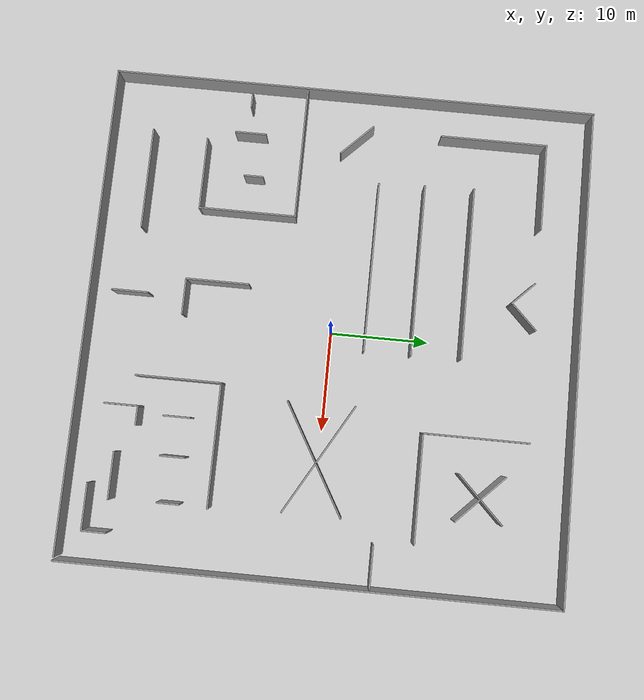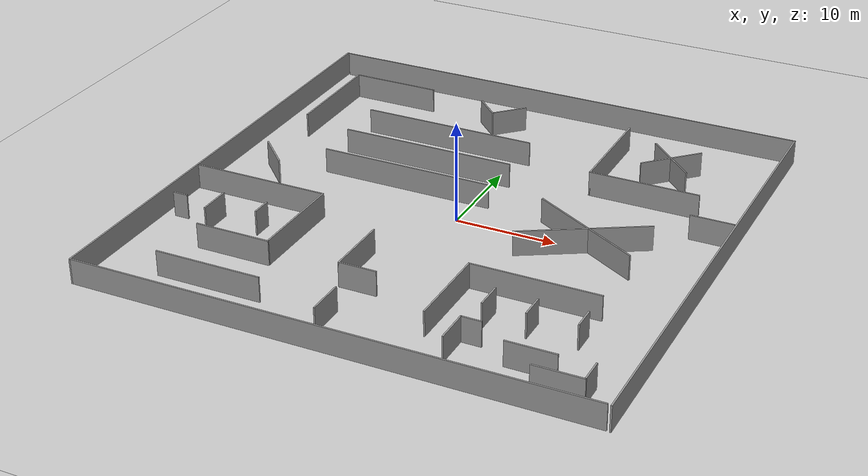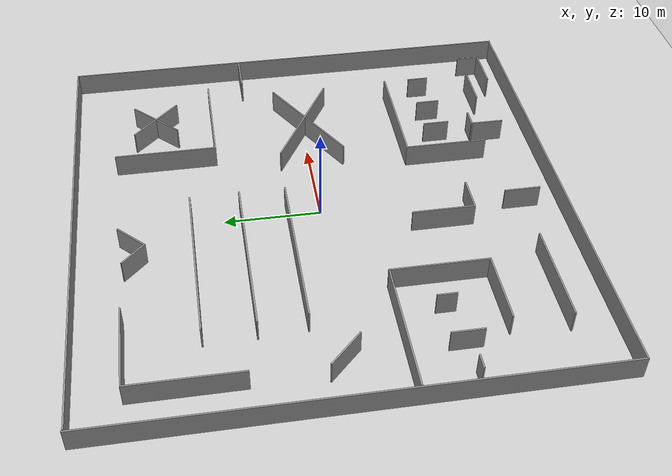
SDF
<sdf version="1.7">
 <world name="default">
  <light name="sun" type="directional">
   <pose>0 0 10 0 -0 0</pose>
   <diffuse>0.8 0.8 0.8 1</diffuse>
   <specular>0.2 0.2 0.2 1</specular>
   <attenuation>
    <range>1000</range>
    <constant>0.9</constant>
    <linear>0.01</linear>
    <quadratic>0.001</quadratic>
   </attenuation>
   <direction>-0.5 0.1 -0.9</direction>
   <spot><inner_angle>0</inner_angle><outer_angle>0</outer_angle><falloff>0</falloff></spot>
  </light>
  <model name="ground_plane">
   <static>1</static>
   <link name="link">
    <collision name="collision">
     <geometry><plane><normal>0 0 1</normal><size>100 100</size></plane></geometry>
     <surface>
      <contact><collide_bitmask>65535</collide_bitmask></contact>
      <friction><ode><mu>100</mu><mu2>50</mu2></ode></friction>
     </surface>
    </collision>
    <visual name="visual">
     <cast_shadows>0</cast_shadows>
     <geometry><plane><normal>0 0 1</normal><size>100 100</size></plane></geometry>
     <material>
      <script><uri>file://media/materials/scripts/gazebo.material</uri><name>Gazebo/Grey</name></script>
     </material>
    </visual>
   </link>
  </model>
  <gravity>0 0 -9.8</gravity>
  <magnetic_field>6e-06 2.3e-05 -4.2e-05</magnetic_field>
  <atmosphere type="adiabatic"/>
  <physics type="ode">
   <max_step_size>0.001</max_step_size>
   <real_time_factor>1</real_time_factor>
   <real_time_update_rate>1000</real_time_update_rate>
  </physics>
  <scene><ambient>0.4 0.4 0.4 1</ambient><background>0.7 0.7 0.7 1</background><shadows>1</shadows></scene>
  <spherical_coordinates>
   <surface_model>EARTH_WGS84</surface_model>
   <latitude_deg>0</latitude_deg>
   <longitude_deg>0</longitude_deg>
   <elevation>0</elevation>
   <heading_deg>0</heading_deg>
  </spherical_coordinates>
  <model name="test">
   <pose>-0.125 0.108001 0 0 -0 0</pose>
   <link name="Wall_0">
    <collision name="Wall_0_Collision">
     <geometry><box><size>50.15 0.15 2.5</size></box></geometry>
     <pose>0 0 1.25 0 -0 0</pose>
    </collision>
    <visual name="Wall_0_Visual">
     <pose>0 0 1.25 0 -0 0</pose>
     <geometry><box><size>50.15 0.15 2.5</size></box></geometry>
     <material>
      <script><uri>file://media/materials/scripts/gazebo.material</uri><name>Gazebo/Grey</name></script>
      <ambient>1 1 1 1</ambient>
     </material>
     <meta><layer>0</layer></meta>
    </visual>
    <pose>0.125 24.892 0 0 -0 0</pose>
   </link>
   <link name="Wall_10">
    <collision name="Wall_10_Collision">
     <geometry><box><size>17.75 0.15 2.5</size></box></geometry>
     <pose>0 0 1.25 0 -0 0</pose>
    </collision>
    <visual name="Wall_10_Visual">
     <pose>0 0 1.25 0 -0 0</pose>
     <geometry><box><size>17.75 0.15 2.5</size></box></geometry>
     <material>
      <script><uri>file://media/materials/scripts/gazebo.material</uri><name>Gazebo/Grey</name></script>
      <ambient>1 1 1 1</ambient>
     </material>
     <meta><layer>0</layer></meta>
    </visual>
    <pose>-6.99975 8.09699 0 0 -0 0</pose>
   </link>
   <link name="Wall_12">
    <collision name="Wall_12_Collision">
     <geometry><box><size>17.5 0.15 2.5</size></box></geometry>
     <pose>0 0 1.25 0 -0 0</pose>
    </collision>
    <visual name="Wall_12_Visual">
     <pose>0 0 1.25 0 -0 0</pose>
     <geometry><box><size>17.5 0.15 2.5</size></box></geometry>
     <material>
      <script><uri>file://media/materials/scripts/gazebo.material</uri><name>Gazebo/Grey</name></script>
      <ambient>1 1 1 1</ambient>
     </material>
     <meta><layer>0</layer></meta>
    </visual>
    <pose>-6.90952 3.36204 0 0 -0 0</pose>
   </link>
   <link name="Wall_14">
    <collision name="Wall_14_Collision">
     <geometry><box><size>12.5 0.15 2.5</size></box></geometry>
     <pose>0 0 1.25 0 -0 0</pose>
    </collision>
    <visual name="Wall_14_Visual">
     <pose>0 0 1.25 0 -0 0</pose>
     <geometry><box><size>12.5 0.15 2.5</size></box></geometry>
     <material>
      <script><uri>file://media/materials/scripts/gazebo.material</uri><name>Gazebo/Grey</name></script>
      <ambient>1 1 1 1</ambient>
     </material>
     <meta><layer>0</layer></meta>
    </visual>
    <pose>12.5435 -10.52 0 0 -0 0</pose>
   </link>
   <link name="Wall_16">
    <collision name="Wall_16_Collision">
     <geometry><box><size>8.75 0.15 2.5</size></box></geometry>
     <pose>0 0 1.25 0 -0 0</pose>
    </collision>
    <visual name="Wall_16_Visual">
     <pose>0 0 1.25 0 -0 0</pose>
     <geometry><box><size>8.75 0.15 2.5</size></box></geometry>
     <material>
      <script><uri>file://media/materials/scripts/gazebo.material</uri><name>Gazebo/Grey</name></script>
      <ambient>1 1 1 1</ambient>
     </material>
     <meta><layer>0</layer></meta>
    </visual>
    <pose>6.36846 -14.82 0 0 -0 -1.5708</pose>
   </link>
   <link name="Wall_2">
    <collision name="Wall_2_Collision">
     <geometry><box><size>50 0.15 2.5</size></box></geometry>
     <pose>0 0 1.25 0 -0 0</pose>
    </collision>
    <visual name="Wall_2_Visual">
     <pose>0 0 1.25 0 -0 0</pose>
     <geometry><box><size>50 0.15 2.5</size></box></geometry>
     <material>
      <script><uri>file://media/materials/scripts/gazebo.material</uri><name>Gazebo/Grey</name></script>
      <ambient>1 1 1 1</ambient>
     </material>
     <meta><layer>0</layer></meta>
    </visual>
    <pose>-25.125 0.032999 0 0 -0 -1.5708</pose>
   </link>
   <link name="Wall_20">
    <collision name="Wall_20_Collision">
     <geometry><box><size>2.75 0.15 2.5</size></box></geometry>
     <pose>0 0 1.25 0 -0 0</pose>
    </collision>
    <visual name="Wall_20_Visual">
     <pose>0 0 1.25 0 -0 0</pose>
     <geometry><box><size>2.75 0.15 2.5</size></box></geometry>
     <material>
      <script><uri>file://media/materials/scripts/gazebo.material</uri><name>Gazebo/Grey</name></script>
      <ambient>1 1 1 1</ambient>
     </material>
     <meta><layer>0</layer></meta>
    </visual>
    <pose>10.1162 -14.5926 0 0 -0 -1.5708</pose>
   </link>
   <link name="Wall_22">
    <collision name="Wall_22_Collision">
     <geometry><box><size>2.5 0.15 2.5</size></box></geometry>
     <pose>0 0 1.25 0 -0 0</pose>
    </collision>
    <visual name="Wall_22_Visual">
     <pose>0 0 1.25 0 -0 0</pose>
     <geometry><box><size>2.5 0.15 2.5</size></box></geometry>
     <material>
      <script><uri>file://media/materials/scripts/gazebo.material</uri><name>Gazebo/Grey</name></script>
      <ambient>1 1 1 1</ambient>
     </material>
     <meta><layer>0</layer></meta>
    </visual>
    <pose>14.0708 -14.5607 0 0 -0 -1.5708</pose>
   </link>
   <link name="Wall_24">
    <collision name="Wall_24_Collision">
     <geometry><box><size>2.25 0.15 2.5</size></box></geometry>
     <pose>0 0 1.25 0 -0 0</pose>
    </collision>
    <visual name="Wall_24_Visual">
     <pose>0 0 1.25 0 -0 0</pose>
     <geometry><box><size>2.25 0.15 2.5</size></box></geometry>
     <material>
      <script><uri>file://media/materials/scripts/gazebo.material</uri><name>Gazebo/Grey</name></script>
      <ambient>1 1 1 1</ambient>
     </material>
     <meta><layer>0</layer></meta>
    </visual>
    <pose>18.6301 -14.4357 0 0 -0 -1.5708</pose>
   </link>
   <link name="Wall_26">
    <collision name="Wall_26_Collision">
     <geometry><box><size>4.75 0.15 2.5</size></box></geometry>
     <pose>0 0 1.25 0 -0 0</pose>
    </collision>
    <visual name="Wall_26_Visual">
     <pose>0 0 1.25 0 -0 0</pose>
     <geometry><box><size>4.75 0.15 2.5</size></box></geometry>
     <material>
      <script><uri>file://media/materials/scripts/gazebo.material</uri><name>Gazebo/Grey</name></script>
      <ambient>1 1 1 1</ambient>
     </material>
     <meta><layer>0</layer></meta>
    </visual>
    <pose>16.4562 -20.3278 0 0 -0 0</pose>
   </link>
   <link name="Wall_28">
    <collision name="Wall_28_Collision">
     <geometry><box><size>2.5 0.15 2.5</size></box></geometry>
     <pose>0 0 1.25 0 -0 0</pose>
    </collision>
    <visual name="Wall_28_Visual">
     <pose>0 0 1.25 0 -0 0</pose>
     <geometry><box><size>2.5 0.15 2.5</size></box></geometry>
     <material>
      <script><uri>file://media/materials/scripts/gazebo.material</uri><name>Gazebo/Grey</name></script>
      <ambient>1 1 1 1</ambient>
     </material>
     <meta><layer>0</layer></meta>
    </visual>
    <pose>22.0102 -21.3613 0 0 -0 -1.5708</pose>
   </link>
   <link name="Wall_29">
    <collision name="Wall_29_Collision">
     <geometry><box><size>4.75 0.15 2.5</size></box></geometry>
     <pose>0 0 1.25 0 -0 0</pose>
    </collision>
    <visual name="Wall_29_Visual">
     <pose>0 0 1.25 0 -0 0</pose>
     <geometry><box><size>4.75 0.15 2.5</size></box></geometry>
     <material>
      <script><uri>file://media/materials/scripts/gazebo.material</uri><name>Gazebo/Grey</name></script>
      <ambient>1 1 1 1</ambient>
     </material>
     <meta><layer>0</layer></meta>
    </visual>
    <pose>19.7102 -22.5363 0 0 -0 3.14159</pose>
   </link>
   <link name="Wall_31">
    <collision name="Wall_31_Collision">
     <geometry><box><size>3.5 0.15 2.5</size></box></geometry>
     <pose>0 0 1.25 0 -0 0</pose>
    </collision>
    <visual name="Wall_31_Visual">
     <pose>0 0 1.25 0 -0 0</pose>
     <geometry><box><size>3.5 0.15 2.5</size></box></geometry>
     <material>
      <script><uri>file://media/materials/scripts/gazebo.material</uri><name>Gazebo/Grey</name></script>
      <ambient>1 1 1 1</ambient>
     </material>
     <meta><layer>0</layer></meta>
    </visual>
    <pose>9.41545 -20.2094 0 0 -0 1.5708</pose>
   </link>
   <link name="Wall_32">
    <collision name="Wall_32_Collision">
     <geometry><box><size>2 0.15 2.5</size></box></geometry>
     <pose>0 0 1.25 0 -0 0</pose>
    </collision>
    <visual name="Wall_32_Visual">
     <pose>0 0 1.25 0 -0 0</pose>
     <geometry><box><size>2 0.15 2.5</size></box></geometry>
     <material>
      <script><uri>file://media/materials/scripts/gazebo.material</uri><name>Gazebo/Grey</name></script>
      <ambient>1 1 1 1</ambient>
     </material>
     <meta><layer>0</layer></meta>
    </visual>
    <pose>10.3404 -18.5344 0 0 -0 0</pose>
   </link>
   <link name="Wall_34">
    <collision name="Wall_34_Collision">
     <geometry><box><size>13.75 0.15 2.5</size></box></geometry>
     <pose>0 0 1.25 0 -0 0</pose>
    </collision>
    <visual name="Wall_34_Visual">
     <pose>0 0 1.25 0 -0 0</pose>
     <geometry><box><size>13.75 0.15 2.5</size></box></geometry>
     <material>
      <script><uri>file://media/materials/scripts/gazebo.material</uri><name>Gazebo/Grey</name></script>
      <ambient>1 1 1 1</ambient>
     </material>
     <meta><layer>0</layer></meta>
    </visual>
    <pose>-18.1201 -4.908 0 0 -0 0</pose>
   </link>
   <link name="Wall_35">
    <collision name="Wall_35_Collision">
     <geometry><box><size>10 0.15 2.5</size></box></geometry>
     <pose>0 0 1.25 0 -0 0</pose>
    </collision>
    <visual name="Wall_35_Visual">
     <pose>0 0 1.25 0 -0 0</pose>
     <geometry><box><size>10 0.15 2.5</size></box></geometry>
     <material>
      <script><uri>file://media/materials/scripts/gazebo.material</uri><name>Gazebo/Grey</name></script>
      <ambient>1 1 1 1</ambient>
     </material>
     <meta><layer>0</layer></meta>
    </visual>
    <pose>-11.3201 -9.833 0 0 -0 -1.5708</pose>
   </link>
   <link name="Wall_36">
    <collision name="Wall_36_Collision">
     <geometry><box><size>7.5 0.15 2.5</size></box></geometry>
     <pose>0 0 1.25 0 -0 0</pose>
    </collision>
    <visual name="Wall_36_Visual">
     <pose>0 0 1.25 0 -0 0</pose>
     <geometry><box><size>7.5 0.15 2.5</size></box></geometry>
     <material>
      <script><uri>file://media/materials/scripts/gazebo.material</uri><name>Gazebo/Grey</name></script>
      <ambient>1 1 1 1</ambient>
     </material>
     <meta><layer>0</layer></meta>
    </visual>
    <pose>-14.9951 -14.758 0 0 -0 3.14159</pose>
   </link>
   <link name="Wall_38">
    <collision name="Wall_38_Collision">
     <geometry><box><size>2 0.15 2.5</size></box></geometry>
     <pose>0 0 1.25 0 -0 0</pose>
    </collision>
    <visual name="Wall_38_Visual">
     <pose>0 0 1.25 0 -0 0</pose>
     <geometry><box><size>2 0.15 2.5</size></box></geometry>
     <material>
      <script><uri>file://media/materials/scripts/gazebo.material</uri><name>Gazebo/Grey</name></script>
      <ambient>1 1 1 1</ambient>
     </material>
     <meta><layer>0</layer></meta>
    </visual>
    <pose>-15.1557 -9.57605 0 0 -0 -1.5708</pose>
   </link>
   <link name="Wall_4">
    <collision name="Wall_4_Collision">
     <geometry><box><size>50 0.15 2.5</size></box></geometry>
     <pose>0 0 1.25 0 -0 0</pose>
    </collision>
    <visual name="Wall_4_Visual">
     <pose>0 0 1.25 0 -0 0</pose>
     <geometry><box><size>50 0.15 2.5</size></box></geometry>
     <material>
      <script><uri>file://media/materials/scripts/gazebo.material</uri><name>Gazebo/Grey</name></script>
      <ambient>1 1 1 1</ambient>
     </material>
     <meta><layer>0</layer></meta>
    </visual>
    <pose>-0.2 -24.892 0 0 -0 0</pose>
   </link>
   <link name="Wall_40">
    <collision name="Wall_40_Collision">
     <geometry><box><size>3.25 0.15 2.5</size></box></geometry>
     <pose>0 0 1.25 0 -0 0</pose>
    </collision>
    <visual name="Wall_40_Visual">
     <pose>0 0 1.25 0 -0 0</pose>
     <geometry><box><size>3.25 0.15 2.5</size></box></geometry>
     <material>
      <script><uri>file://media/materials/scripts/gazebo.material</uri><name>Gazebo/Grey</name></script>
      <ambient>1 1 1 1</ambient>
     </material>
     <meta><layer>0</layer></meta>
    </visual>
    <pose>-19.7124 -10.3638 0 0 -0 -1.5708</pose>
   </link>
   <link name="Wall_42">
    <collision name="Wall_42_Collision">
     <geometry><box><size>1.5 0.15 2.5</size></box></geometry>
     <pose>0 0 1.25 0 -0 0</pose>
    </collision>
    <visual name="Wall_42_Visual">
     <pose>0 0 1.25 0 -0 0</pose>
     <geometry><box><size>1.5 0.15 2.5</size></box></geometry>
     <material>
      <script><uri>file://media/materials/scripts/gazebo.material</uri><name>Gazebo/Grey</name></script>
      <ambient>1 1 1 1</ambient>
     </material>
     <meta><layer>0</layer></meta>
    </visual>
    <pose>-23.2687 -10.6039 0 0 -0 0</pose>
   </link>
   <link name="Wall_44">
    <collision name="Wall_44_Collision">
     <geometry><box><size>10.75 0.15 2.5</size></box></geometry>
     <pose>0 0 1.25 0 -0 0</pose>
    </collision>
    <visual name="Wall_44_Visual">
     <pose>0 0 1.25 0 -0 0</pose>
     <geometry><box><size>10.75 0.15 2.5</size></box></geometry>
     <material>
      <script><uri>file://media/materials/scripts/gazebo.material</uri><name>Gazebo/Grey</name></script>
      <ambient>1 1 1 1</ambient>
     </material>
     <meta><layer>0</layer></meta>
    </visual>
    <pose>9.41825 15.261 0 0 -0 -1.5708</pose>
   </link>
   <link name="Wall_45">
    <collision name="Wall_45_Collision">
     <geometry><box><size>11 0.15 2.5</size></box></geometry>
     <pose>0 0 1.25 0 -0 0</pose>
    </collision>
    <visual name="Wall_45_Visual">
     <pose>0 0 1.25 0 -0 0</pose>
     <geometry><box><size>11 0.15 2.5</size></box></geometry>
     <material>
      <script><uri>file://media/materials/scripts/gazebo.material</uri><name>Gazebo/Grey</name></script>
      <ambient>1 1 1 1</ambient>
     </material>
     <meta><layer>0</layer></meta>
    </visual>
    <pose>14.8433 9.961 0 0 -0 0</pose>
   </link>
   <link name="Wall_47">
    <collision name="Wall_47_Collision">
     <geometry><box><size>6.5 0.15 2.5</size></box></geometry>
     <pose>0 0 1.25 0 -0 0</pose>
    </collision>
    <visual name="Wall_47_Visual">
     <pose>0 0 1.25 0 -0 0</pose>
     <geometry><box><size>6.5 0.15 2.5</size></box></geometry>
     <material>
      <script><uri>file://media/materials/scripts/gazebo.material</uri><name>Gazebo/Grey</name></script>
      <ambient>1 1 1 1</ambient>
     </material>
     <meta><layer>0</layer></meta>
    </visual>
    <pose>-3.84516 -12.0702 0 0 -0 -1.5708</pose>
   </link>
   <link name="Wall_48">
    <collision name="Wall_48_Collision">
     <geometry><box><size>3.75 0.15 2.5</size></box></geometry>
     <pose>0 0 1.25 0 -0 0</pose>
    </collision>
    <visual name="Wall_48_Visual">
     <pose>0 0 1.25 0 -0 0</pose>
     <geometry><box><size>3.75 0.15 2.5</size></box></geometry>
     <material>
      <script><uri>file://media/materials/scripts/gazebo.material</uri><name>Gazebo/Grey</name></script>
      <ambient>1 1 1 1</ambient>
     </material>
     <meta><layer>0</layer></meta>
    </visual>
    <pose>-2.04516 -15.2452 0 0 -0 0</pose>
   </link>
   <link name="Wall_50">
    <collision name="Wall_50_Collision">
     <geometry><box><size>6.5 0.15 2.5</size></box></geometry>
     <pose>0 0 1.25 0 -0 0</pose>
    </collision>
    <visual name="Wall_50_Visual">
     <pose>0 0 1.25 0 -0 0</pose>
     <geometry><box><size>6.5 0.15 2.5</size></box></geometry>
     <material>
      <script><uri>file://media/materials/scripts/gazebo.material</uri><name>Gazebo/Grey</name></script>
      <ambient>1 1 1 1</ambient>
     </material>
     <meta><layer>0</layer></meta>
    </visual>
    <pose>15.3916 16.1189 0 0 -0 -2.35619</pose>
   </link>
   <link name="Wall_52">
    <collision name="Wall_52_Collision">
     <geometry><box><size>6.75 0.15 2.5</size></box></geometry>
     <pose>0 0 1.25 0 -0 0</pose>
    </collision>
    <visual name="Wall_52_Visual">
     <pose>0 0 1.25 0 -0 0</pose>
     <geometry><box><size>6.75 0.15 2.5</size></box></geometry>
     <material>
      <script><uri>file://media/materials/scripts/gazebo.material</uri><name>Gazebo/Grey</name></script>
      <ambient>1 1 1 1</ambient>
     </material>
     <meta><layer>0</layer></meta>
    </visual>
    <pose>15.332 16.1119 0 0 -0 -0.785398</pose>
   </link>
   <link name="Wall_54">
    <collision name="Wall_54_Collision">
     <geometry><box><size>12.75 0.15 2.5</size></box></geometry>
     <pose>0 0 1.25 0 -0 0</pose>
    </collision>
    <visual name="Wall_54_Visual">
     <pose>0 0 1.25 0 -0 0</pose>
     <geometry><box><size>12.75 0.15 2.5</size></box></geometry>
     <material>
      <script><uri>file://media/materials/scripts/gazebo.material</uri><name>Gazebo/Grey</name></script>
      <ambient>1 1 1 1</ambient>
     </material>
     <meta><layer>0</layer></meta>
    </visual>
    <pose>12.9944 -0.571903 0 0 -0 -2.61799</pose>
   </link>
   <link name="Wall_56">
    <collision name="Wall_56_Collision">
     <geometry><box><size>12.75 0.15 2.5</size></box></geometry>
     <pose>0 0 1.25 0 -0 0</pose>
    </collision>
    <visual name="Wall_56_Visual">
     <pose>0 0 1.25 0 -0 0</pose>
     <geometry><box><size>12.75 0.15 2.5</size></box></geometry>
     <material>
      <script><uri>file://media/materials/scripts/gazebo.material</uri><name>Gazebo/Grey</name></script>
      <ambient>1 1 1 1</ambient>
     </material>
     <meta><layer>0</layer></meta>
    </visual>
    <pose>12.9213 -0.083679 0 0 -0 -0.523599</pose>
   </link>
   <link name="Wall_58">
    <collision name="Wall_58_Collision">
     <geometry><box><size>11 0.15 2.5</size></box></geometry>
     <pose>0 0 1.25 0 -0 0</pose>
    </collision>
    <visual name="Wall_58_Visual">
     <pose>0 0 1.25 0 -0 0</pose>
     <geometry><box><size>11 0.15 2.5</size></box></geometry>
     <material>
      <script><uri>file://media/materials/scripts/gazebo.material</uri><name>Gazebo/Grey</name></script>
      <ambient>1 1 1 1</ambient>
     </material>
     <meta><layer>0</layer></meta>
    </visual>
    <pose>-21.2585 14.8382 0 0 -0 1.5708</pose>
   </link>
   <link name="Wall_59">
    <collision name="Wall_59_Collision">
     <geometry><box><size>9 0.15 2.5</size></box></geometry>
     <pose>0 0 1.25 0 -0 0</pose>
    </collision>
    <visual name="Wall_59_Visual">
     <pose>0 0 1.25 0 -0 0</pose>
     <geometry><box><size>9 0.15 2.5</size></box></geometry>
     <material>
      <script><uri>file://media/materials/scripts/gazebo.material</uri><name>Gazebo/Grey</name></script>
      <ambient>1 1 1 1</ambient>
     </material>
     <meta><layer>0</layer></meta>
    </visual>
    <pose>-16.8335 20.2632 0 0 -0 0</pose>
   </link>
   <link name="Wall_6">
    <collision name="Wall_6_Collision">
     <geometry><box><size>50 0.15 2.5</size></box></geometry>
     <pose>0 0 1.25 0 -0 0</pose>
    </collision>
    <visual name="Wall_6_Visual">
     <pose>0 0 1.25 0 -0 0</pose>
     <geometry><box><size>50 0.15 2.5</size></box></geometry>
     <material>
      <script><uri>file://media/materials/scripts/gazebo.material</uri><name>Gazebo/Grey</name></script>
      <ambient>1 1 1 1</ambient>
     </material>
     <meta><layer>0</layer></meta>
    </visual>
    <pose>25.125 -0.033001 0 0 -0 -1.5708</pose>
   </link>
   <link name="Wall_61">
    <collision name="Wall_61_Collision">
     <geometry><box><size>4.5 0.15 2.5</size></box></geometry>
     <pose>0 0 1.25 0 -0 0</pose>
    </collision>
    <visual name="Wall_61_Visual">
     <pose>0 0 1.25 0 -0 0</pose>
     <geometry><box><size>4.5 0.15 2.5</size></box></geometry>
     <material>
      <script><uri>file://media/materials/scripts/gazebo.material</uri><name>Gazebo/Grey</name></script>
      <ambient>1 1 1 1</ambient>
     </material>
     <meta><layer>0</layer></meta>
    </visual>
    <pose>-20.046 0.714657 0 0 -0 -0.785398</pose>
   </link>
   <link name="Wall_63">
    <collision name="Wall_63_Collision">
     <geometry><box><size>10.5 0.15 2.5</size></box></geometry>
     <pose>0 0 1.25 0 -0 0</pose>
    </collision>
    <visual name="Wall_63_Visual">
     <pose>0 0 1.25 0 -0 0</pose>
     <geometry><box><size>10.5 0.15 2.5</size></box></geometry>
     <material>
      <script><uri>file://media/materials/scripts/gazebo.material</uri><name>Gazebo/Grey</name></script>
      <ambient>1 1 1 1</ambient>
     </material>
     <meta><layer>0</layer></meta>
    </visual>
    <pose>-13.9678 -20.4498 0 0 -0 0</pose>
   </link>
   <link name="Wall_65">
    <collision name="Wall_65_Collision">
     <geometry><box><size>3.75 0.15 2.5</size></box></geometry>
     <pose>0 0 1.25 0 -0 0</pose>
    </collision>
    <visual name="Wall_65_Visual">
     <pose>0 0 1.25 0 -0 0</pose>
     <geometry><box><size>3.75 0.15 2.5</size></box></geometry>
     <material>
      <script><uri>file://media/materials/scripts/gazebo.material</uri><name>Gazebo/Grey</name></script>
      <ambient>1 1 1 1</ambient>
     </material>
     <meta><layer>0</layer></meta>
    </visual>
    <pose>-2.055 -20.7851 0 0 -0 -1.5708</pose>
   </link>
   <link name="Wall_67">
    <collision name="Wall_67_Collision">
     <geometry><box><size>3.75 0.15 2.5</size></box></geometry>
     <pose>0 0 1.25 0 -0 0</pose>
    </collision>
    <visual name="Wall_67_Visual">
     <pose>0 0 1.25 0 -0 0</pose>
     <geometry><box><size>3.75 0.15 2.5</size></box></geometry>
     <material>
      <script><uri>file://media/materials/scripts/gazebo.material</uri><name>Gazebo/Grey</name></script>
      <ambient>1 1 1 1</ambient>
     </material>
     <meta><layer>0</layer></meta>
    </visual>
    <pose>-3.16506 19.1255 0 0 -0 -2.35619</pose>
   </link>
   <link name="Wall_68">
    <collision name="Wall_68_Collision">
     <geometry><box><size>3.25 0.15 2.5</size></box></geometry>
     <pose>0 0 1.25 0 -0 0</pose>
    </collision>
    <visual name="Wall_68_Visual">
     <pose>0 0 1.25 0 -0 0</pose>
     <geometry><box><size>3.25 0.15 2.5</size></box></geometry>
     <material>
      <script><uri>file://media/materials/scripts/gazebo.material</uri><name>Gazebo/Grey</name></script>
      <ambient>1 1 1 1</ambient>
     </material>
     <meta><layer>0</layer></meta>
    </visual>
    <pose>-5.53386 18.9487 0 0 -0 2.35619</pose>
   </link>
   <link name="Wall_70">
    <collision name="Wall_70_Collision">
     <geometry><box><size>4.25 0.15 2.5</size></box></geometry>
     <pose>0 0 1.25 0 -0 0</pose>
    </collision>
    <visual name="Wall_70_Visual">
     <pose>0 0 1.25 0 -0 0</pose>
     <geometry><box><size>4.25 0.15 2.5</size></box></geometry>
     <material>
      <script><uri>file://media/materials/scripts/gazebo.material</uri><name>Gazebo/Grey</name></script>
      <ambient>1 1 1 1</ambient>
     </material>
     <meta><layer>0</layer></meta>
    </visual>
    <pose>22.8601 5.99566 0 0 -0 0</pose>
   </link>
   <link name="Wall_8">
    <collision name="Wall_8_Collision">
     <geometry><box><size>17.75 0.15 2.5</size></box></geometry>
     <pose>0 0 1.25 0 -0 0</pose>
    </collision>
    <visual name="Wall_8_Visual">
     <pose>0 0 1.25 0 -0 0</pose>
     <geometry><box><size>17.75 0.15 2.5</size></box></geometry>
     <material>
      <script><uri>file://media/materials/scripts/gazebo.material</uri><name>Gazebo/Grey</name></script>
      <ambient>1 1 1 1</ambient>
     </material>
     <meta><layer>0</layer></meta>
    </visual>
    <pose>-7.10736 13.1548 0 0 -0 0</pose>
   </link>
   <static>1</static>
  </model>
 </world>
</sdf>
